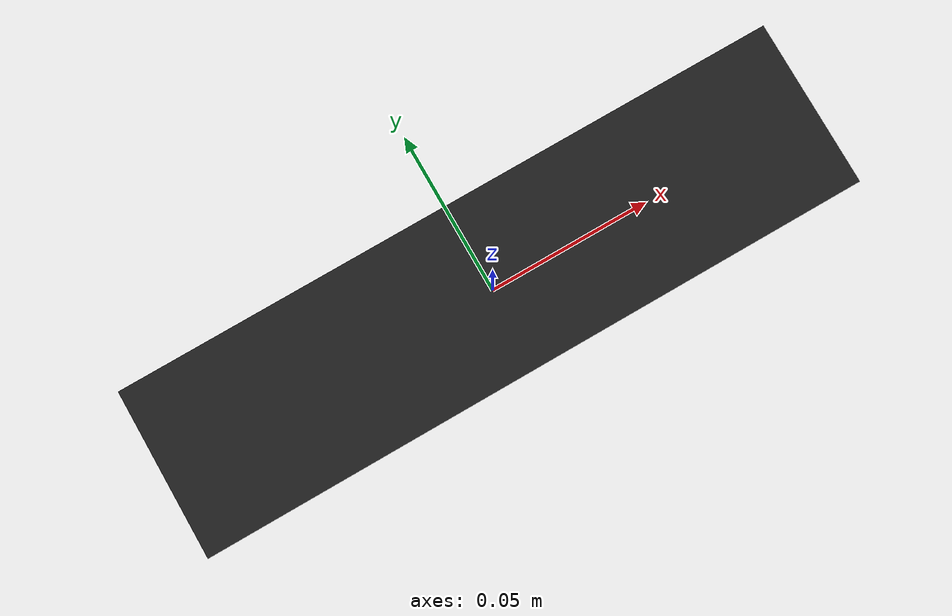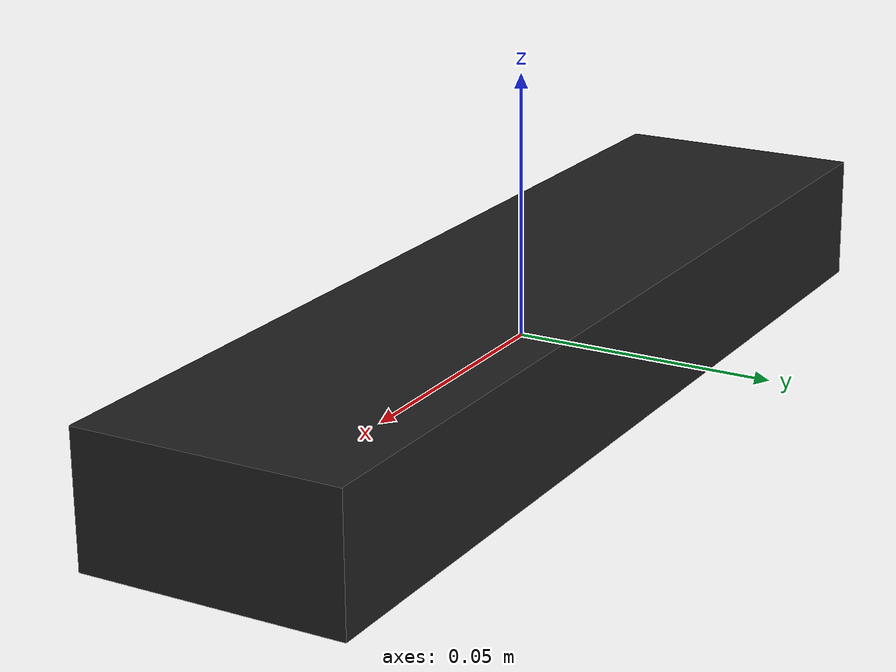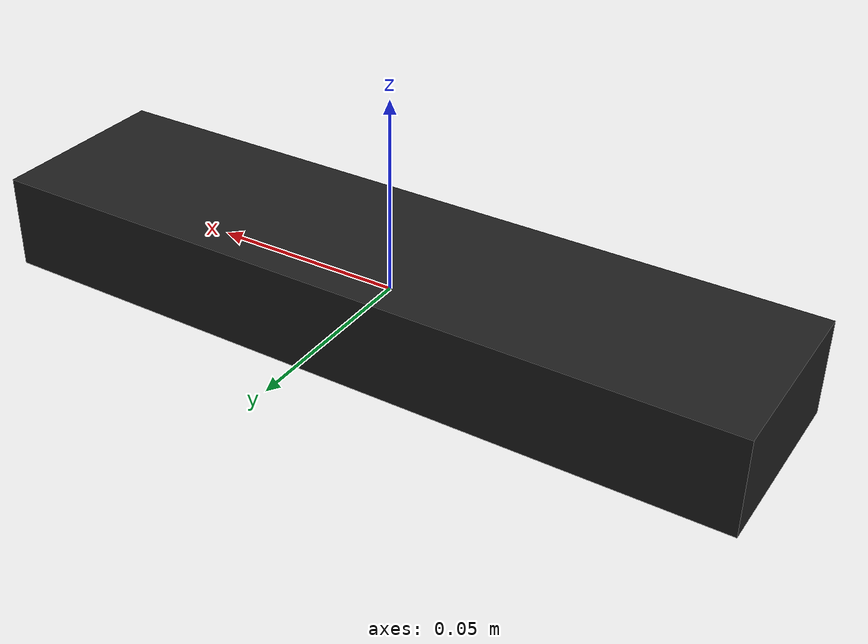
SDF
<?xml version="1.0"?>
<sdf version="1.6">
  <model name="black_remote">
    <link name="link">
      <inertial>
        <mass>0.12</mass>
        <inertia>
          <ixx>0.000035</ixx><ixy>0</ixy><ixz>0</ixz>
          <iyy>0.000410</iyy><iyz>0</iyz>
          <izz>0.000430</izz>
        </inertia>
      </inertial>
      <collision name="collision">
        <geometry>
          <box><size>0.20 0.05 0.025</size></box>
        </geometry>
        <surface>
          <friction><ode><mu>0.8</mu><mu2>0.8</mu2></ode></friction>
          <contact><ode><max_vel>0.01</max_vel><min_depth>0.001</min_depth></ode></contact>
        </surface>
      </collision>
      <visual name="visual">
        <geometry>
          <box><size>0.20 0.05 0.025</size></box>
        </geometry>
        <material>
          <ambient>0.08 0.08 0.08 1</ambient>
          <diffuse>0.12 0.12 0.12 1</diffuse>
          <specular>0.3 0.3 0.3 1</specular>
        </material>
      </visual>
    </link>
  </model>
</sdf>
